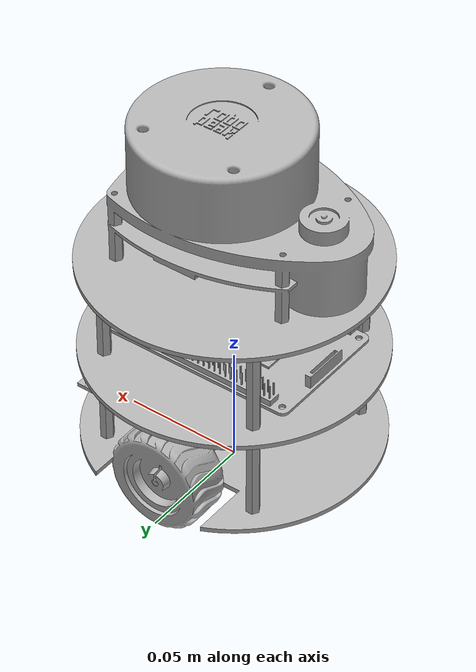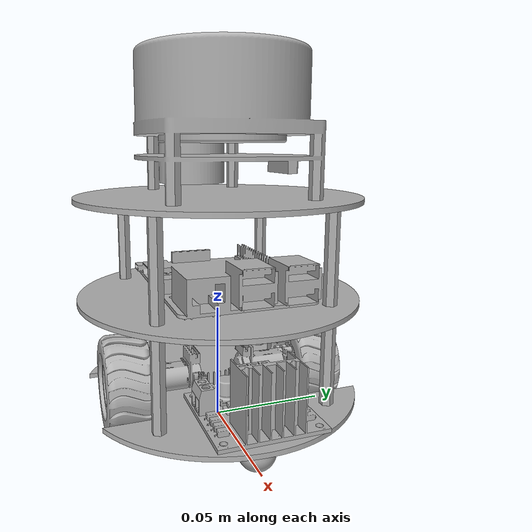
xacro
<?xml version="1.0" ?>
<robot name="auro" xmlns:xacro="http://www.ros.org/wiki/xacro">

<xacro:include filename="$(find auro_description)/urdf/materials.xacro" />
<xacro:include filename="$(find auro_description)/urdf/auro.trans" />
<xacro:include filename="$(find auro_description)/urdf/auro.gazebo" />
<link name="base_link">
  <inertial>
    <origin rpy="0 0 0" xyz="-2.511292304266886e-17 -8.370974347556287e-18 0.015"/>
    <mass value="0.045836131061907315"/>
    <inertia ixx="2.4e-05" ixy="-0.0" ixz="-0.0" iyy="5.2e-05" iyz="-0.0" izz="7.6e-05"/>
  </inertial>
  <visual>
    <origin rpy="0 0 0" xyz="0 0 0"/>
    <geometry>
      <mesh filename="package://auro_description/meshes/base_link.stl" scale="0.001 0.001 0.001"/>
    </geometry>
    <material name="silver_default"/>
  </visual>
  <collision>
    <origin rpy="0 0 0" xyz="0 0 0"/>
    <geometry>
      <mesh filename="package://auro_description/meshes/base_link.stl" scale="0.001 0.001 0.001"/>
    </geometry>
  </collision>
</link>

<link name="stanoff_fl1_1">
  <inertial>
    <origin rpy="0 0 0" xyz="0.03500000000000001 0.03500000000000001 0.020000000000000004"/>
    <mass value="0.002338268590217967"/>
    <inertia ixx="0.0" ixy="0.0" ixz="0.0" iyy="0.0" iyz="-0.0" izz="0.0"/>
  </inertial>
  <visual>
    <origin rpy="0 0 0" xyz="-0.0 0.0 -0.016"/>
    <geometry>
      <mesh filename="package://auro_description/meshes/stanoff_fl1_1.stl" scale="0.001 0.001 0.001"/>
    </geometry>
    <material name="silver_default"/>
  </visual>
  <collision>
    <origin rpy="0 0 0" xyz="-0.0 0.0 -0.016"/>
    <geometry>
      <mesh filename="package://auro_description/meshes/stanoff_fl1_1.stl" scale="0.001 0.001 0.001"/>
    </geometry>
  </collision>
</link>

<link name="stanoff_fr1_1">
  <inertial>
    <origin rpy="0 0 0" xyz="0.03499999999999999 -0.035 0.019999999999999962"/>
    <mass value="0.002338268590217988"/>
    <inertia ixx="0.0" ixy="0.0" ixz="-0.0" iyy="0.0" iyz="0.0" izz="0.0"/>
  </inertial>
  <visual>
    <origin rpy="0 0 0" xyz="-0.0 0.0 -0.016"/>
    <geometry>
      <mesh filename="package://auro_description/meshes/stanoff_fr1_1.stl" scale="0.001 0.001 0.001"/>
    </geometry>
    <material name="silver_default"/>
  </visual>
  <collision>
    <origin rpy="0 0 0" xyz="-0.0 0.0 -0.016"/>
    <geometry>
      <mesh filename="package://auro_description/meshes/stanoff_fr1_1.stl" scale="0.001 0.001 0.001"/>
    </geometry>
  </collision>
</link>

<link name="stanoff_br1_1">
  <inertial>
    <origin rpy="0 0 0" xyz="-0.03500000000000001 -0.03500000000000001 0.02000000000000001"/>
    <mass value="0.002338268590217967"/>
    <inertia ixx="0.0" ixy="-0.0" ixz="-0.0" iyy="0.0" iyz="0.0" izz="0.0"/>
  </inertial>
  <visual>
    <origin rpy="0 0 0" xyz="-0.0 0.0 -0.016"/>
    <geometry>
      <mesh filename="package://auro_description/meshes/stanoff_br1_1.stl" scale="0.001 0.001 0.001"/>
    </geometry>
    <material name="silver_default"/>
  </visual>
  <collision>
    <origin rpy="0 0 0" xyz="-0.0 0.0 -0.016"/>
    <geometry>
      <mesh filename="package://auro_description/meshes/stanoff_br1_1.stl" scale="0.001 0.001 0.001"/>
    </geometry>
  </collision>
</link>

<link name="stanoff_bl1_1">
  <inertial>
    <origin rpy="0 0 0" xyz="-0.03499999999999999 0.034999999999999976 0.02000000000000001"/>
    <mass value="0.002338268590217988"/>
    <inertia ixx="0.0" ixy="0.0" ixz="-0.0" iyy="0.0" iyz="0.0" izz="0.0"/>
  </inertial>
  <visual>
    <origin rpy="0 0 0" xyz="-0.0 0.0 -0.016"/>
    <geometry>
      <mesh filename="package://auro_description/meshes/stanoff_bl1_1.stl" scale="0.001 0.001 0.001"/>
    </geometry>
    <material name="silver_default"/>
  </visual>
  <collision>
    <origin rpy="0 0 0" xyz="-0.0 0.0 -0.016"/>
    <geometry>
      <mesh filename="package://auro_description/meshes/stanoff_bl1_1.stl" scale="0.001 0.001 0.001"/>
    </geometry>
  </collision>
</link>

<link name="mid_plate_1">
  <inertial>
    <origin rpy="0 0 0" xyz="-0.034999999999999996 -0.03500000000000003 0.0009999999999999731"/>
    <mass value="0.06107256118578534"/>
    <inertia ixx="5.5e-05" ixy="0.0" ixz="-0.0" iyy="5.5e-05" iyz="-0.0" izz="0.00011"/>
  </inertial>
  <visual>
    <origin rpy="0 0 0" xyz="-0.035 -0.035 -0.056"/>
    <geometry>
      <mesh filename="package://auro_description/meshes/mid_plate_1.stl" scale="0.001 0.001 0.001"/>
    </geometry>
    <material name="silver_default"/>
  </visual>
  <collision>
    <origin rpy="0 0 0" xyz="-0.035 -0.035 -0.056"/>
    <geometry>
      <mesh filename="package://auro_description/meshes/mid_plate_1.stl" scale="0.001 0.001 0.001"/>
    </geometry>
  </collision>
</link>

<link name="stanoff_br2_1">
  <inertial>
    <origin rpy="0 0 0" xyz="-0.03499999999999999 -0.0349999999999999 0.0199999999999999"/>
    <mass value="0.0023382685902179874"/>
    <inertia ixx="0.0" ixy="0.0" ixz="-0.0" iyy="0.0" iyz="0.0" izz="0.0"/>
  </inertial>
  <visual>
    <origin rpy="0 0 0" xyz="-0.0 0.0 -0.058"/>
    <geometry>
      <mesh filename="package://auro_description/meshes/stanoff_br2_1.stl" scale="0.001 0.001 0.001"/>
    </geometry>
    <material name="silver_default"/>
  </visual>
  <collision>
    <origin rpy="0 0 0" xyz="-0.0 0.0 -0.058"/>
    <geometry>
      <mesh filename="package://auro_description/meshes/stanoff_br2_1.stl" scale="0.001 0.001 0.001"/>
    </geometry>
  </collision>
</link>

<link name="stanoff_bl2_1">
  <inertial>
    <origin rpy="0 0 0" xyz="-0.035 0.034999999999999996 0.019999999999999983"/>
    <mass value="0.0023382685902179666"/>
    <inertia ixx="0.0" ixy="-0.0" ixz="-0.0" iyy="0.0" iyz="0.0" izz="0.0"/>
  </inertial>
  <visual>
    <origin rpy="0 0 0" xyz="-0.0 0.0 -0.058"/>
    <geometry>
      <mesh filename="package://auro_description/meshes/stanoff_bl2_1.stl" scale="0.001 0.001 0.001"/>
    </geometry>
    <material name="silver_default"/>
  </visual>
  <collision>
    <origin rpy="0 0 0" xyz="-0.0 0.0 -0.058"/>
    <geometry>
      <mesh filename="package://auro_description/meshes/stanoff_bl2_1.stl" scale="0.001 0.001 0.001"/>
    </geometry>
  </collision>
</link>

<link name="stanoff_fl2_1">
  <inertial>
    <origin rpy="0 0 0" xyz="0.034999999999999976 0.03499999999999995 0.019999999999999955"/>
    <mass value="0.0023382685902179874"/>
    <inertia ixx="0.0" ixy="0.0" ixz="0.0" iyy="0.0" iyz="-0.0" izz="0.0"/>
  </inertial>
  <visual>
    <origin rpy="0 0 0" xyz="-0.0 0.0 -0.058"/>
    <geometry>
      <mesh filename="package://auro_description/meshes/stanoff_fl2_1.stl" scale="0.001 0.001 0.001"/>
    </geometry>
    <material name="silver_default"/>
  </visual>
  <collision>
    <origin rpy="0 0 0" xyz="-0.0 0.0 -0.058"/>
    <geometry>
      <mesh filename="package://auro_description/meshes/stanoff_fl2_1.stl" scale="0.001 0.001 0.001"/>
    </geometry>
  </collision>
</link>

<link name="stanoff_fr2_1">
  <inertial>
    <origin rpy="0 0 0" xyz="0.034999999999999996 -0.03500000000000001 0.019999999999999983"/>
    <mass value="0.0023382685902179666"/>
    <inertia ixx="0.0" ixy="-0.0" ixz="0.0" iyy="0.0" iyz="-0.0" izz="0.0"/>
  </inertial>
  <visual>
    <origin rpy="0 0 0" xyz="-0.0 0.0 -0.058"/>
    <geometry>
      <mesh filename="package://auro_description/meshes/stanoff_fr2_1.stl" scale="0.001 0.001 0.001"/>
    </geometry>
    <material name="silver_default"/>
  </visual>
  <collision>
    <origin rpy="0 0 0" xyz="-0.0 0.0 -0.058"/>
    <geometry>
      <mesh filename="package://auro_description/meshes/stanoff_fr2_1.stl" scale="0.001 0.001 0.001"/>
    </geometry>
  </collision>
</link>

<link name="top_plate_1">
  <inertial>
    <origin rpy="0 0 0" xyz="-0.03500000000000003 -0.03500000000000004 0.0009999999999999454"/>
    <mass value="0.06107256118578588"/>
    <inertia ixx="5.5e-05" ixy="-0.0" ixz="-0.0" iyy="5.5e-05" iyz="-0.0" izz="0.00011"/>
  </inertial>
  <visual>
    <origin rpy="0 0 0" xyz="-0.035 -0.035 -0.098"/>
    <geometry>
      <mesh filename="package://auro_description/meshes/top_plate_1.stl" scale="0.001 0.001 0.001"/>
    </geometry>
    <material name="silver_default"/>
  </visual>
  <collision>
    <origin rpy="0 0 0" xyz="-0.035 -0.035 -0.098"/>
    <geometry>
      <mesh filename="package://auro_description/meshes/top_plate_1.stl" scale="0.001 0.001 0.001"/>
    </geometry>
  </collision>
</link>

<link name="raspberryPi3BSimplified_STEP_v2_1">
  <inertial>
    <origin rpy="0 0 0" xyz="0.013965472519732647 -0.0017540083650863186 0.007888830680916802"/>
    <mass value="0.13472167579144478"/>
    <inertia ixx="4.1e-05" ixy="-0.0" ixz="-9e-06" iyy="8.3e-05" iyz="0.0" izz="0.000118"/>
  </inertial>
  <visual>
    <origin rpy="0 0 0" xyz="-0.0 0.0 -0.058"/>
    <geometry>
      <mesh filename="package://auro_description/meshes/raspberryPi3BSimplified_STEP_v2_1.stl" scale="0.001 0.001 0.001"/>
    </geometry>
    <material name="silver_default"/>
  </visual>
  <collision>
    <origin rpy="0 0 0" xyz="-0.0 0.0 -0.058"/>
    <geometry>
      <mesh filename="package://auro_description/meshes/raspberryPi3BSimplified_STEP_v2_1.stl" scale="0.001 0.001 0.001"/>
    </geometry>
  </collision>
</link>

<link name="motorDriver_v1_1">
  <inertial>
    <origin rpy="0 0 0" xyz="-0.020648797379965007 0.0013505150736973282 0.009585756120599587"/>
    <mass value="0.009779013638836728"/>
    <inertia ixx="2e-06" ixy="0.0" ixz="-0.0" iyy="2e-06" iyz="-0.0" izz="3e-06"/>
  </inertial>
  <visual>
    <origin rpy="0 0 0" xyz="-0.06 0.0 -0.016"/>
    <geometry>
      <mesh filename="package://auro_description/meshes/motorDriver_v1_1.stl" scale="0.001 0.001 0.001"/>
    </geometry>
    <material name="silver_default"/>
  </visual>
  <collision>
    <origin rpy="0 0 0" xyz="-0.06 0.0 -0.016"/>
    <geometry>
      <mesh filename="package://auro_description/meshes/motorDriver_v1_1.stl" scale="0.001 0.001 0.001"/>
    </geometry>
  </collision>
</link>

<link name="lidar_v1_1">
  <inertial>
    <origin rpy="0 0 0" xyz="-0.0012888773125924514 9.192633573603724e-05 0.03526818424722303"/>
    <mass value="1.3392964352221826"/>
    <inertia ixx="0.000619" ixy="-1e-06" ixz="-0.000159" iyy="0.000967" iyz="3e-06" izz="0.001105"/>
  </inertial>
  <visual>
    <origin rpy="0 0 0" xyz="0.0 0.0 -0.1"/>
    <geometry>
      <mesh filename="package://auro_description/meshes/lidar_v1_1.stl" scale="0.001 0.001 0.001"/>
    </geometry>
    <material name="silver_default"/>
  </visual>
  <collision>
    <origin rpy="0 0 0" xyz="0.0 0.0 -0.1"/>
    <geometry>
      <mesh filename="package://auro_description/meshes/lidar_v1_1.stl" scale="0.001 0.001 0.001"/>
    </geometry>
  </collision>
</link>

<link name="motor_v1_1">
  <inertial>
    <origin rpy="0 0 0" xyz="2.6844215724007433e-05 0.006836853075349234 0.005517295992648701"/>
    <mass value="0.02052286332209721"/>
    <inertia ixx="2e-06" ixy="0.0" ixz="-0.0" iyy="0.0" iyz="-0.0" izz="2e-06"/>
  </inertial>
  <visual>
    <origin rpy="0 0 0" xyz="-0.0 0.03 -0.016"/>
    <geometry>
      <mesh filename="package://auro_description/meshes/motor_v1_1.stl" scale="0.001 0.001 0.001"/>
    </geometry>
    <material name="silver_default"/>
  </visual>
  <collision>
    <origin rpy="0 0 0" xyz="-0.0 0.03 -0.016"/>
    <geometry>
      <mesh filename="package://auro_description/meshes/motor_v1_1.stl" scale="0.001 0.001 0.001"/>
    </geometry>
  </collision>
</link>

<link name="motor_v1_2">
  <inertial>
    <origin rpy="0 0 0" xyz="-2.6844215724007433e-05 -0.006836853075349234 0.005517295992648698"/>
    <mass value="0.02052286332209721"/>
    <inertia ixx="2e-06" ixy="0.0" ixz="0.0" iyy="0.0" iyz="0.0" izz="2e-06"/>
  </inertial>
  <visual>
    <origin rpy="0 0 0" xyz="-0.0 -0.03 -0.016"/>
    <geometry>
      <mesh filename="package://auro_description/meshes/motor_v1_2.stl" scale="0.001 0.001 0.001"/>
    </geometry>
    <material name="silver_default"/>
  </visual>
  <collision>
    <origin rpy="0 0 0" xyz="-0.0 -0.03 -0.016"/>
    <geometry>
      <mesh filename="package://auro_description/meshes/motor_v1_2.stl" scale="0.001 0.001 0.001"/>
    </geometry>
  </collision>
</link>

<link name="caster_1">
  <inertial>
    <origin rpy="0 0 0" xyz="0.045 1.0926221127947672e-18 -0.005885869565217389"/>
    <mass value="0.00548698791903542"/>
    <inertia ixx="0.0" ixy="-0.0" ixz="0.0" iyy="0.0" iyz="0.0" izz="0.0"/>
  </inertial>
  <visual>
    <origin rpy="0 0 0" xyz="-0.0 -0.0 -0.014"/>
    <geometry>
      <mesh filename="package://auro_description/meshes/caster_1.stl" scale="0.001 0.001 0.001"/>
    </geometry>
    <material name="silver_default"/>
  </visual>
  <collision>
    <origin rpy="0 0 0" xyz="-0.0 -0.0 -0.014"/>
    <geometry>
      <mesh filename="package://auro_description/meshes/caster_1.stl" scale="0.001 0.001 0.001"/>
    </geometry>
  </collision>
</link>

<link name="caster_2">
  <inertial>
    <origin rpy="0 0 0" xyz="-0.045 1.0926221127947672e-18 -0.005885869565217389"/>
    <mass value="0.00548698791903542"/>
    <inertia ixx="0.0" ixy="-0.0" ixz="-0.0" iyy="0.0" iyz="0.0" izz="0.0"/>
  </inertial>
  <visual>
    <origin rpy="0 0 0" xyz="-0.0 -0.0 -0.014"/>
    <geometry>
      <mesh filename="package://auro_description/meshes/caster_2.stl" scale="0.001 0.001 0.001"/>
    </geometry>
    <material name="silver_default"/>
  </visual>
  <collision>
    <origin rpy="0 0 0" xyz="-0.0 -0.0 -0.014"/>
    <geometry>
      <mesh filename="package://auro_description/meshes/caster_2.stl" scale="0.001 0.001 0.001"/>
    </geometry>
  </collision>
</link>

<link name="wheel_v1_v1_2">
  <inertial>
    <origin rpy="0 0 0" xyz="-4.979218830455885e-10 0.09226024805851639 -6.143174471465174e-06"/>
    <mass value="0.020021605237100355"/>
    <inertia ixx="3e-06" ixy="0.0" ixz="-0.0" iyy="5e-06" iyz="0.0" izz="3e-06"/>
  </inertial>
  <visual>
    <origin rpy="0 0 0" xyz="-0.0 0.0499 -0.021"/>
    <geometry>
      <mesh filename="package://auro_description/meshes/wheel_v1_v1_2.stl" scale="0.001 0.001 0.001"/>
    </geometry>
    <material name="silver_default"/>
  </visual>
  <collision>
    <origin rpy="0 0 0" xyz="-0.0 0.0499 -0.021"/>
    <geometry>
      <mesh filename="package://auro_description/meshes/wheel_v1_v1_2.stl" scale="0.001 0.001 0.001"/>
    </geometry>
  </collision>
</link>

<link name="wheel_v1_v1_1">
  <inertial>
    <origin rpy="0 0 0" xyz="4.979218119915495e-10 0.007539751941483611 -6.143174471531093e-06"/>
    <mass value="0.020021605237100355"/>
    <inertia ixx="3e-06" ixy="0.0" ixz="0.0" iyy="5e-06" iyz="-0.0" izz="3e-06"/>
  </inertial>
  <visual>
    <origin rpy="0 0 0" xyz="-0.0 0.0499 -0.0208"/>
    <geometry>
      <mesh filename="package://auro_description/meshes/wheel_v1_v1_1.stl" scale="0.001 0.001 0.001"/>
    </geometry>
    <material name="silver_default"/>
  </visual>
  <collision>
    <origin rpy="0 0 0" xyz="-0.0 0.0499 -0.0208"/>
    <geometry>
      <mesh filename="package://auro_description/meshes/wheel_v1_v1_1.stl" scale="0.001 0.001 0.001"/>
    </geometry>
  </collision>
</link>

<joint name="Rigid1" type="fixed">
  <origin rpy="0 0 0" xyz="0.0 0.0 0.016"/>
  <parent link="base_link"/>
  <child link="stanoff_fl1_1"/>
</joint>

<joint name="Rigid2" type="fixed">
  <origin rpy="0 0 0" xyz="0.0 0.0 0.016"/>
  <parent link="base_link"/>
  <child link="stanoff_fr1_1"/>
</joint>

<joint name="Rigid3" type="fixed">
  <origin rpy="0 0 0" xyz="0.0 0.0 0.016"/>
  <parent link="base_link"/>
  <child link="stanoff_br1_1"/>
</joint>

<joint name="Rigid4" type="fixed">
  <origin rpy="0 0 0" xyz="0.0 0.0 0.016"/>
  <parent link="base_link"/>
  <child link="stanoff_bl1_1"/>
</joint>

<joint name="Rigid5" type="fixed">
  <origin rpy="0 0 0" xyz="0.035 0.035 0.04"/>
  <parent link="stanoff_fl1_1"/>
  <child link="mid_plate_1"/>
</joint>

<joint name="Rigid6" type="fixed">
  <origin rpy="0 0 0" xyz="-0.035 -0.035 0.002"/>
  <parent link="mid_plate_1"/>
  <child link="stanoff_br2_1"/>
</joint>

<joint name="Rigid7" type="fixed">
  <origin rpy="0 0 0" xyz="-0.035 -0.035 0.002"/>
  <parent link="mid_plate_1"/>
  <child link="stanoff_bl2_1"/>
</joint>

<joint name="Rigid8" type="fixed">
  <origin rpy="0 0 0" xyz="-0.035 -0.035 0.002"/>
  <parent link="mid_plate_1"/>
  <child link="stanoff_fl2_1"/>
</joint>

<joint name="Rigid9" type="fixed">
  <origin rpy="0 0 0" xyz="-0.035 -0.035 0.002"/>
  <parent link="mid_plate_1"/>
  <child link="stanoff_fr2_1"/>
</joint>

<joint name="Rigid10" type="fixed">
  <origin rpy="0 0 0" xyz="0.035 0.035 0.04"/>
  <parent link="stanoff_fl2_1"/>
  <child link="top_plate_1"/>
</joint>

<joint name="Rigid11" type="fixed">
  <origin rpy="0 0 0" xyz="-0.035 -0.035 0.002"/>
  <parent link="mid_plate_1"/>
  <child link="raspberryPi3BSimplified_STEP_v2_1"/>
</joint>

<joint name="Rigid12" type="fixed">
  <origin rpy="0 0 0" xyz="0.06 0.0 0.016"/>
  <parent link="base_link"/>
  <child link="motorDriver_v1_1"/>
</joint>

<joint name="Rigid13" type="fixed">
  <origin rpy="0 0 0" xyz="-0.035 -0.035 0.002"/>
  <parent link="top_plate_1"/>
  <child link="lidar_v1_1"/>
</joint>

<joint name="Rigid14" type="fixed">
  <origin rpy="0 0 0" xyz="0.0 -0.03 0.016"/>
  <parent link="base_link"/>
  <child link="motor_v1_1"/>
</joint>

<joint name="Rigid15" type="fixed">
  <origin rpy="0 0 0" xyz="0.0 0.03 0.016"/>
  <parent link="base_link"/>
  <child link="motor_v1_2"/>
</joint>

<joint name="Rigid18" type="fixed">
  <origin rpy="0 0 0" xyz="0.0 0.0 0.014"/>
  <parent link="base_link"/>
  <child link="caster_1"/>
</joint>

<joint name="Rigid19" type="fixed">
  <origin rpy="0 0 0" xyz="0.0 0.0 0.014"/>
  <parent link="base_link"/>
  <child link="caster_2"/>
</joint>

<joint name="Rev26" type="continuous">
  <origin rpy="0 0 0" xyz="0.0 -0.0799 0.005"/>
  <parent link="motor_v1_2"/>
  <child link="wheel_v1_v1_2"/>
  <axis xyz="0.0 -1.0 0.0"/>
</joint>

<joint name="Rev27" type="continuous">
  <origin rpy="0 0 0" xyz="0.0 -0.0199 0.0048"/>
  <parent link="motor_v1_1"/>
  <child link="wheel_v1_v1_1"/>
  <axis xyz="0.0 -1.0 -0.0"/>
</joint>

</robot>

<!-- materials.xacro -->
<robot name="auro" xmlns:xacro="http://www.ros.org/wiki/xacro" >

<material name="silver_default">
  <color rgba="0.700 0.700 0.700 1.000"/>
</material>

</robot>

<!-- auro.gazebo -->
<robot name="auro" xmlns:xacro="http://www.ros.org/wiki/xacro" >

<xacro:property name="body_color" value="Gazebo/Silver" />

<gazebo>
  <plugin filename="libgazebo_ros_control.so" name="control"/>
</gazebo>
<gazebo reference="base_link">
  <material>${body_color}</material>
  <mu1>0.2</mu1>
  <mu2>0.2</mu2>
  <selfCollide>true</selfCollide>
  <gravity>true</gravity>
</gazebo>

<gazebo reference="stanoff_fl1_1">
  <material>${body_color}</material>
  <mu1>0.2</mu1>
  <mu2>0.2</mu2>
  <selfCollide>true</selfCollide>
</gazebo>

<gazebo reference="stanoff_fr1_1">
  <material>${body_color}</material>
  <mu1>0.2</mu1>
  <mu2>0.2</mu2>
  <selfCollide>true</selfCollide>
</gazebo>

<gazebo reference="stanoff_br1_1">
  <material>${body_color}</material>
  <mu1>0.2</mu1>
  <mu2>0.2</mu2>
  <selfCollide>true</selfCollide>
</gazebo>

<gazebo reference="stanoff_bl1_1">
  <material>${body_color}</material>
  <mu1>0.2</mu1>
  <mu2>0.2</mu2>
  <selfCollide>true</selfCollide>
</gazebo>

<gazebo reference="mid_plate_1">
  <material>${body_color}</material>
  <mu1>0.2</mu1>
  <mu2>0.2</mu2>
  <selfCollide>true</selfCollide>
</gazebo>

<gazebo reference="stanoff_br2_1">
  <material>${body_color}</material>
  <mu1>0.2</mu1>
  <mu2>0.2</mu2>
  <selfCollide>true</selfCollide>
</gazebo>

<gazebo reference="stanoff_bl2_1">
  <material>${body_color}</material>
  <mu1>0.2</mu1>
  <mu2>0.2</mu2>
  <selfCollide>true</selfCollide>
</gazebo>

<gazebo reference="stanoff_fl2_1">
  <material>${body_color}</material>
  <mu1>0.2</mu1>
  <mu2>0.2</mu2>
  <selfCollide>true</selfCollide>
</gazebo>

<gazebo reference="stanoff_fr2_1">
  <material>${body_color}</material>
  <mu1>0.2</mu1>
  <mu2>0.2</mu2>
  <selfCollide>true</selfCollide>
</gazebo>

<gazebo reference="top_plate_1">
  <material>${body_color}</material>
  <mu1>0.2</mu1>
  <mu2>0.2</mu2>
  <selfCollide>true</selfCollide>
</gazebo>

<gazebo reference="raspberryPi3BSimplified_STEP_v2_1">
  <material>${body_color}</material>
  <mu1>0.2</mu1>
  <mu2>0.2</mu2>
  <selfCollide>true</selfCollide>
</gazebo>

<gazebo reference="motorDriver_v1_1">
  <material>${body_color}</material>
  <mu1>0.2</mu1>
  <mu2>0.2</mu2>
  <selfCollide>true</selfCollide>
</gazebo>

<gazebo reference="lidar_v1_1">
  <material>${body_color}</material>
  <mu1>0.2</mu1>
  <mu2>0.2</mu2>
  <selfCollide>true</selfCollide>
</gazebo>

<gazebo reference="motor_v1_1">
  <material>${body_color}</material>
  <mu1>0.2</mu1>
  <mu2>0.2</mu2>
  <selfCollide>true</selfCollide>
</gazebo>

<gazebo reference="motor_v1_2">
  <material>${body_color}</material>
  <mu1>0.2</mu1>
  <mu2>0.2</mu2>
  <selfCollide>true</selfCollide>
</gazebo>

<gazebo reference="caster_1">
  <material>${body_color}</material>
  <mu1>0.2</mu1>
  <mu2>0.2</mu2>
  <selfCollide>true</selfCollide>
</gazebo>

<gazebo reference="caster_2">
  <material>${body_color}</material>
  <mu1>0.2</mu1>
  <mu2>0.2</mu2>
  <selfCollide>true</selfCollide>
</gazebo>

<gazebo reference="wheel_v1_v1_2">
  <material>${body_color}</material>
  <mu1>0.2</mu1>
  <mu2>0.2</mu2>
  <selfCollide>true</selfCollide>
</gazebo>

<gazebo reference="wheel_v1_v1_1">
  <material>${body_color}</material>
  <mu1>0.2</mu1>
  <mu2>0.2</mu2>
  <selfCollide>true</selfCollide>
</gazebo>

</robot>
